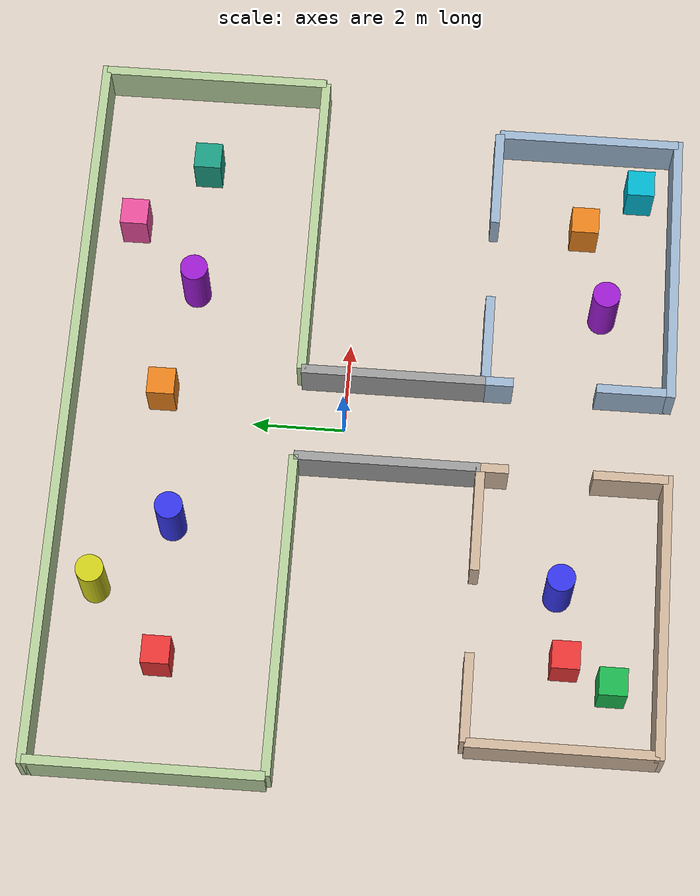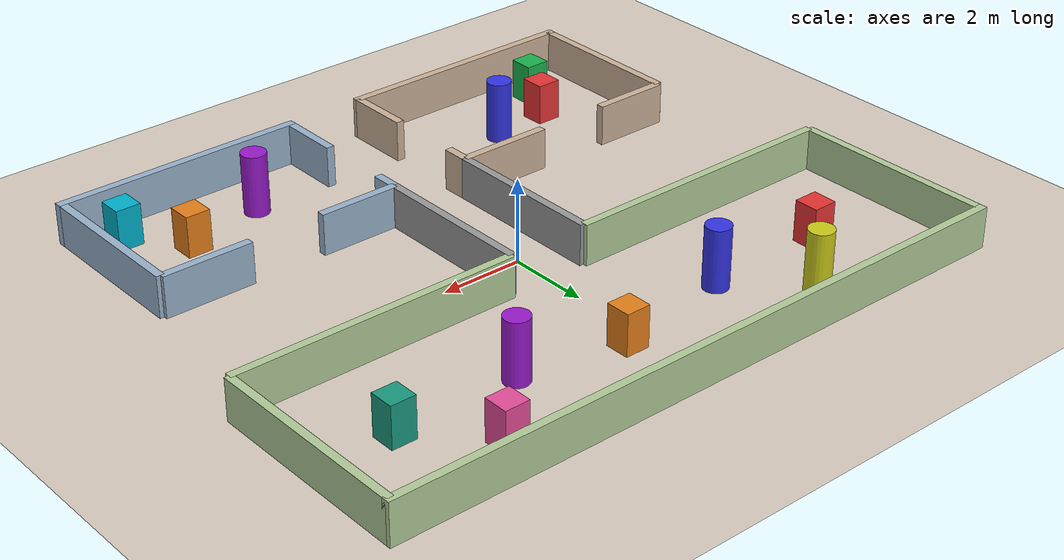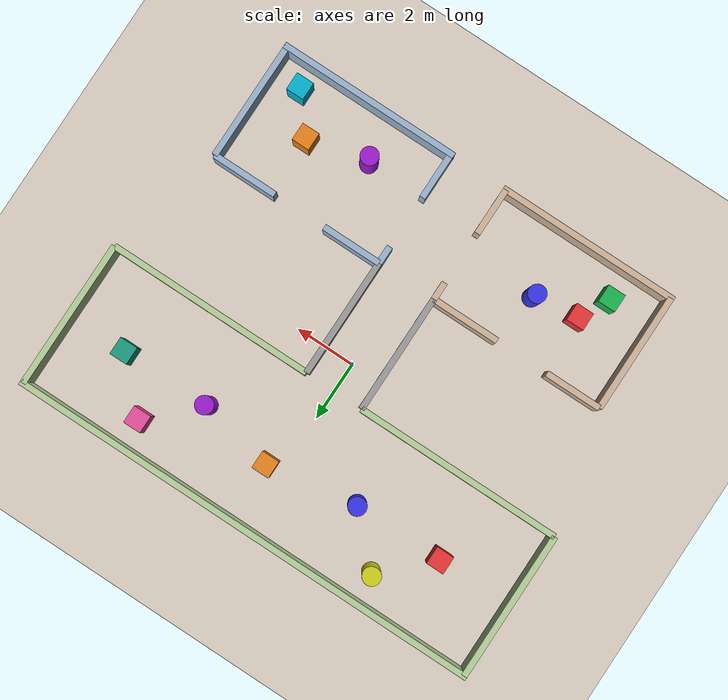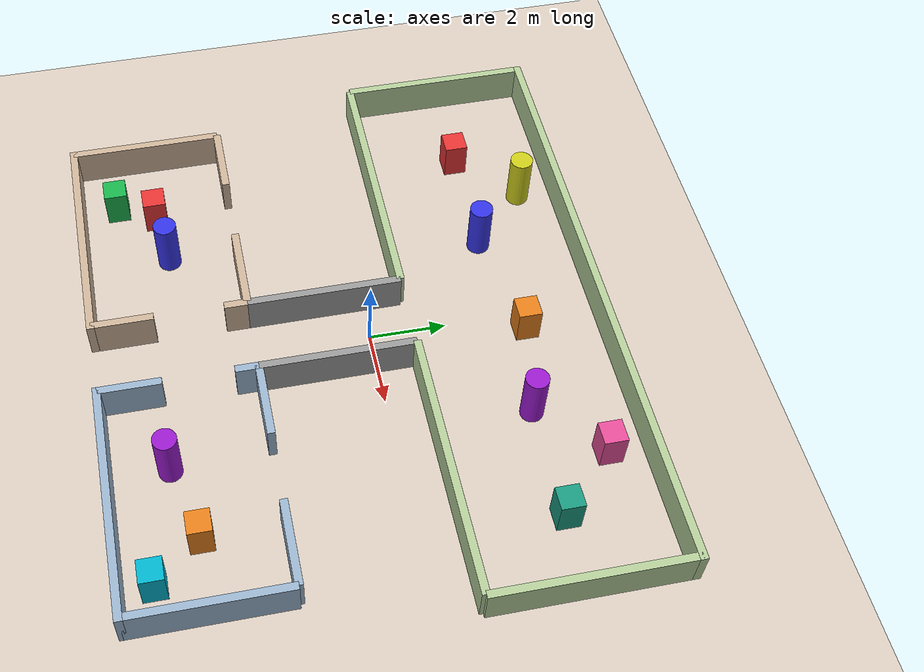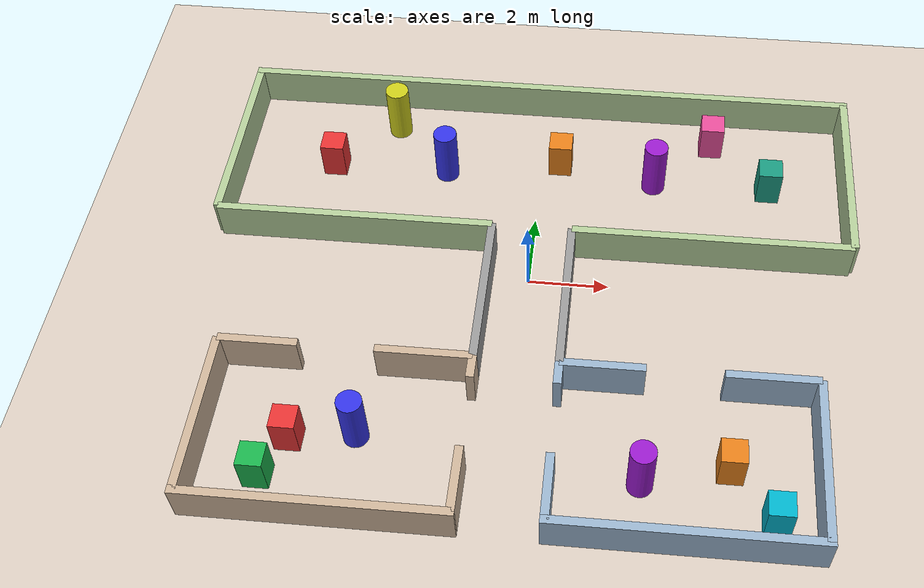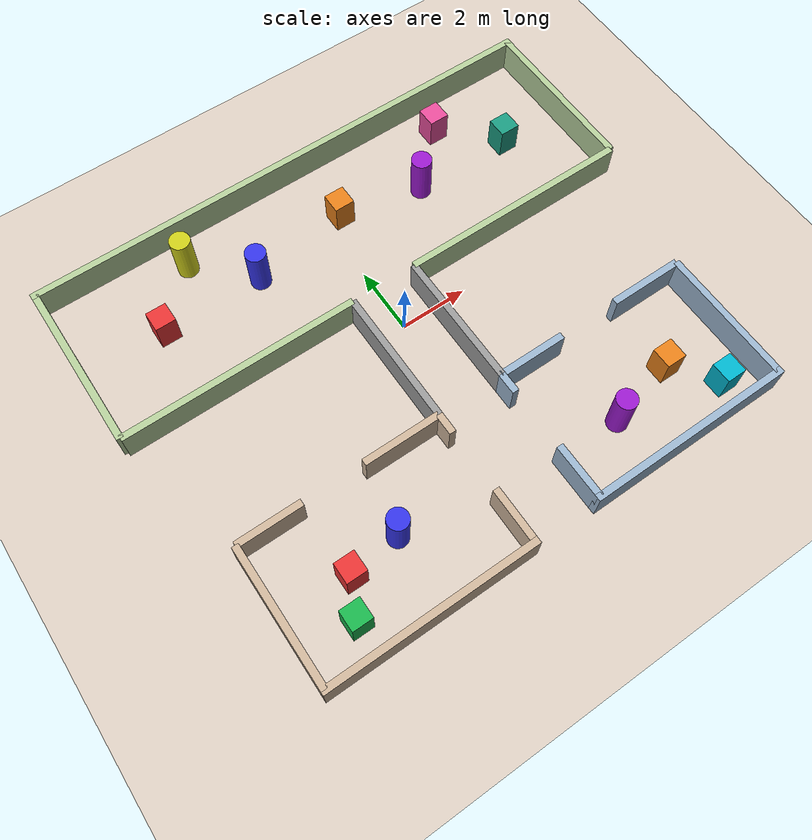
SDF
<?xml version="1.0" ?>
<sdf version="1.6">
  <world name="default">
    <physics name="1ms" type="ignored">
      <max_step_size>0.001</max_step_size>
      <real_time_factor>1.0</real_time_factor>
    </physics>
    <plugin filename="libignition-gazebo-physics-system.so"
            name="ignition::gazebo::systems::Physics"/>
    <plugin filename="libignition-gazebo-user-commands-system.so"
            name="ignition::gazebo::systems::UserCommands"/>
    <plugin filename="libignition-gazebo-scene-broadcaster-system.so"
            name="ignition::gazebo::systems::SceneBroadcaster"/>

    <light type="directional" name="sun">
      <cast_shadows>true</cast_shadows>
      <pose>0 0 10 0 0 0</pose>
      <diffuse>0.85 0.85 0.85 1</diffuse>
      <specular>0.2 0.2 0.2 1</specular>
      <attenuation>
        <range>1000</range><constant>0.9</constant>
        <linear>0.01</linear><quadratic>0.001</quadratic>
      </attenuation>
      <direction>-0.5 0.1 -0.9</direction>
    </light>

    <!-- Ground -->
    <model name="ground_plane"><static>true</static>
      <link name="link">
        <collision name="collision"><geometry><plane><normal>0 0 1</normal><size>100 100</size></plane></geometry></collision>
        <visual name="visual"><geometry><plane><normal>0 0 1</normal><size>100 100</size></plane></geometry>
          <material><ambient>0.85 0.8 0.75 1</ambient><diffuse>0.85 0.8 0.75 1</diffuse></material></visual>
      </link>
    </model>

    <model name="r1_south"><static>true</static><pose>-4 -7 0.5 0 0 0</pose>
      <link name="link"><collision name="c"><geometry><box><size>6.2 0.2 1</size></box></geometry></collision>
        <visual name="v"><geometry><box><size>6.2 0.2 1</size></box></geometry>
          <material><ambient>0.8 0.7 0.6 1</ambient><diffuse>0.8 0.7 0.6 1</diffuse></material></visual></link>
    </model>
    <model name="r1_west"><static>true</static><pose>-7 -5 0.5 0 0 0</pose>
      <link name="link"><collision name="c"><geometry><box><size>0.2 4 1</size></box></geometry></collision>
        <visual name="v"><geometry><box><size>0.2 4 1</size></box></geometry>
          <material><ambient>0.8 0.7 0.6 1</ambient><diffuse>0.8 0.7 0.6 1</diffuse></material></visual></link>
    </model>
    <!-- North wall: left piece x=-7→-5.1 (len=1.9, cx=-6.05), gap -5.1→-3.3 (1.8m), right piece x=-3.3→-1 (len=2.3, cx=-2.15) -->
    <model name="r1_north_L"><static>true</static><pose>-6.05 -3 0.5 0 0 0</pose>
      <link name="link"><collision name="c"><geometry><box><size>1.9 0.2 1</size></box></geometry></collision>
        <visual name="v"><geometry><box><size>1.9 0.2 1</size></box></geometry>
          <material><ambient>0.8 0.7 0.6 1</ambient><diffuse>0.8 0.7 0.6 1</diffuse></material></visual></link>
    </model>
    <model name="r1_north_R"><static>true</static><pose>-2.15 -3 0.5 0 0 0</pose>
      <link name="link"><collision name="c"><geometry><box><size>2.3 0.2 1</size></box></geometry></collision>
        <visual name="v"><geometry><box><size>2.3 0.2 1</size></box></geometry>
          <material><ambient>0.8 0.7 0.6 1</ambient><diffuse>0.8 0.7 0.6 1</diffuse></material></visual></link>
    </model>
    <!-- East wall: bottom y=-7→-5.4 (len=1.6, cy=-6.2), gap -5.4→-3.6 (1.8m), top y=-3.6→-3 (len=0.6, cy=-3.3) -->
    <model name="r1_east_B"><static>true</static><pose>-1 -6.2 0.5 0 0 0</pose>
      <link name="link"><collision name="c"><geometry><box><size>0.2 1.6 1</size></box></geometry></collision>
        <visual name="v"><geometry><box><size>0.2 1.6 1</size></box></geometry>
          <material><ambient>0.8 0.7 0.6 1</ambient><diffuse>0.8 0.7 0.6 1</diffuse></material></visual></link>
    </model>
    <model name="r1_east_T"><static>true</static><pose>-1 -3.3 0.5 0 0 0</pose>
      <link name="link"><collision name="c"><geometry><box><size>0.2 0.6 1</size></box></geometry></collision>
        <visual name="v"><geometry><box><size>0.2 0.6 1</size></box></geometry>
          <material><ambient>0.8 0.7 0.6 1</ambient><diffuse>0.8 0.7 0.6 1</diffuse></material></visual></link>
    </model>

    <!-- Room 1 Obstacles — interior x=-5.5→-2.5, y=-5.5→-4.5 -->
    <model name="r1_obs1"><static>true</static><pose>-5.0 -5.0 0.5 0 0 0</pose>
      <link name="link"><collision name="c"><geometry><box><size>0.6 0.6 1</size></box></geometry></collision>
        <visual name="v"><geometry><box><size>0.6 0.6 1</size></box></geometry>
          <material><ambient>0.9 0.2 0.2 1</ambient><diffuse>0.9 0.2 0.2 1</diffuse></material></visual></link>
    </model>
    <model name="r1_obs2"><static>true</static><pose>-3.5 -4.8 0.75 0 0 0</pose>
      <link name="link"><collision name="c"><geometry><cylinder><radius>0.3</radius><length>1.5</length></cylinder></geometry></collision>
        <visual name="v"><geometry><cylinder><radius>0.3</radius><length>1.5</length></cylinder></geometry>
          <material><ambient>0.2 0.2 0.9 1</ambient><diffuse>0.2 0.2 0.9 1</diffuse></material></visual></link>
    </model>
    <model name="r1_obs3"><static>true</static><pose>-5.5 -6.0 0.5 0 0 0</pose>
      <link name="link"><collision name="c"><geometry><box><size>0.6 0.6 1</size></box></geometry></collision>
        <visual name="v"><geometry><box><size>0.6 0.6 1</size></box></geometry>
          <material><ambient>0.1 0.7 0.3 1</ambient><diffuse>0.1 0.7 0.3 1</diffuse></material></visual></link>
    </model>

    <model name="r2_south"><static>true</static><pose>4 -7 0.5 0 0 0</pose>
      <link name="link"><collision name="c"><geometry><box><size>6.2 0.2 1</size></box></geometry></collision>
        <visual name="v"><geometry><box><size>6.2 0.2 1</size></box></geometry>
          <material><ambient>0.6 0.7 0.8 1</ambient><diffuse>0.6 0.7 0.8 1</diffuse></material></visual></link>
    </model>
    <model name="r2_east"><static>true</static><pose>7 -5 0.5 0 0 0</pose>
      <link name="link"><collision name="c"><geometry><box><size>0.2 4 1</size></box></geometry></collision>
        <visual name="v"><geometry><box><size>0.2 4 1</size></box></geometry>
          <material><ambient>0.6 0.7 0.8 1</ambient><diffuse>0.6 0.7 0.8 1</diffuse></material></visual></link>
    </model>
    <model name="r2_north_L"><static>true</static><pose>2 -3 0.5 0 0 0</pose>
      <link name="link"><collision name="c"><geometry><box><size>2 0.2 1</size></box></geometry></collision>
        <visual name="v"><geometry><box><size>2 0.2 1</size></box></geometry>
          <material><ambient>0.6 0.7 0.8 1</ambient><diffuse>0.6 0.7 0.8 1</diffuse></material></visual></link>
    </model>
    <model name="r2_north_R"><static>true</static><pose>5.9 -3 0.5 0 0 0</pose>
      <link name="link"><collision name="c"><geometry><box><size>2.2 0.2 1</size></box></geometry></collision>
        <visual name="v"><geometry><box><size>2.2 0.2 1</size></box></geometry>
          <material><ambient>0.6 0.7 0.8 1</ambient><diffuse>0.6 0.7 0.8 1</diffuse></material></visual></link>
    </model>
    <model name="r2_west_B"><static>true</static><pose>1 -6.2 0.5 0 0 0</pose>
      <link name="link"><collision name="c"><geometry><box><size>0.2 1.6 1</size></box></geometry></collision>
        <visual name="v"><geometry><box><size>0.2 1.6 1</size></box></geometry>
          <material><ambient>0.6 0.7 0.8 1</ambient><diffuse>0.6 0.7 0.8 1</diffuse></material></visual></link>
    </model>
    <model name="r2_west_T"><static>true</static><pose>1 -3.3 0.5 0 0 0</pose>
      <link name="link"><collision name="c"><geometry><box><size>0.2 0.6 1</size></box></geometry></collision>
        <visual name="v"><geometry><box><size>0.2 0.6 1</size></box></geometry>
          <material><ambient>0.6 0.7 0.8 1</ambient><diffuse>0.6 0.7 0.8 1</diffuse></material></visual></link>
    </model>

    <!-- Room 2 Obstacles -->
    <model name="r2_obs1"><static>true</static><pose>5.0 -5.0 0.5 0 0 0</pose>
      <link name="link"><collision name="c"><geometry><box><size>0.6 0.6 1</size></box></geometry></collision>
        <visual name="v"><geometry><box><size>0.6 0.6 1</size></box></geometry>
          <material><ambient>0.9 0.5 0.1 1</ambient><diffuse>0.9 0.5 0.1 1</diffuse></material></visual></link>
    </model>
    <model name="r2_obs2"><static>true</static><pose>3.0 -5.5 0.75 0 0 0</pose>
      <link name="link"><collision name="c"><geometry><cylinder><radius>0.3</radius><length>1.5</length></cylinder></geometry></collision>
        <visual name="v"><geometry><cylinder><radius>0.3</radius><length>1.5</length></cylinder></geometry>
          <material><ambient>0.6 0.1 0.8 1</ambient><diffuse>0.6 0.1 0.8 1</diffuse></material></visual></link>
    </model>
    <model name="r2_obs3"><static>true</static><pose>6.0 -6.2 0.5 0 0 0</pose>
      <link name="link"><collision name="c"><geometry><box><size>0.6 0.6 1</size></box></geometry></collision>
        <visual name="v"><geometry><box><size>0.6 0.6 1</size></box></geometry>
          <material><ambient>0.0 0.7 0.8 1</ambient><diffuse>0.0 0.7 0.8 1</diffuse></material></visual></link>
    </model>

    <model name="hall_west"><static>true</static><pose>-1 -1 0.5 0 0 0</pose>
      <link name="link"><collision name="c"><geometry><box><size>0.2 4 1</size></box></geometry></collision>
        <visual name="v"><geometry><box><size>0.2 4 1</size></box></geometry>
          <material><ambient>0.6 0.6 0.6 1</ambient><diffuse>0.6 0.6 0.6 1</diffuse></material></visual></link>
    </model>
    <model name="hall_east"><static>true</static><pose>1 -1 0.5 0 0 0</pose>
      <link name="link"><collision name="c"><geometry><box><size>0.2 4 1</size></box></geometry></collision>
        <visual name="v"><geometry><box><size>0.2 4 1</size></box></geometry>
          <material><ambient>0.6 0.6 0.6 1</ambient><diffuse>0.6 0.6 0.6 1</diffuse></material></visual></link>
    </model>

    <model name="r3_north"><static>true</static><pose>0 6 0.5 0 0 0</pose>
      <link name="link"><collision name="c"><geometry><box><size>16.2 0.2 1</size></box></geometry></collision>
        <visual name="v"><geometry><box><size>16.2 0.2 1</size></box></geometry>
          <material><ambient>0.7 0.8 0.6 1</ambient><diffuse>0.7 0.8 0.6 1</diffuse></material></visual></link>
    </model>
    <model name="r3_west"><static>true</static><pose>-8 3.5 0.5 0 0 0</pose>
      <link name="link"><collision name="c"><geometry><box><size>0.2 5 1</size></box></geometry></collision>
        <visual name="v"><geometry><box><size>0.2 5 1</size></box></geometry>
          <material><ambient>0.7 0.8 0.6 1</ambient><diffuse>0.7 0.8 0.6 1</diffuse></material></visual></link>
    </model>
    <model name="r3_east"><static>true</static><pose>8 3.5 0.5 0 0 0</pose>
      <link name="link"><collision name="c"><geometry><box><size>0.2 5 1</size></box></geometry></collision>
        <visual name="v"><geometry><box><size>0.2 5 1</size></box></geometry>
          <material><ambient>0.7 0.8 0.6 1</ambient><diffuse>0.7 0.8 0.6 1</diffuse></material></visual></link>
    </model>
    <model name="r3_south_L"><static>true</static><pose>-4.5 1 0.5 0 0 0</pose>
      <link name="link"><collision name="c"><geometry><box><size>7 0.2 1</size></box></geometry></collision>
        <visual name="v"><geometry><box><size>7 0.2 1</size></box></geometry>
          <material><ambient>0.7 0.8 0.6 1</ambient><diffuse>0.7 0.8 0.6 1</diffuse></material></visual></link>
    </model>
    <model name="r3_south_R"><static>true</static><pose>4.5 1 0.5 0 0 0</pose>
      <link name="link"><collision name="c"><geometry><box><size>7 0.2 1</size></box></geometry></collision>
        <visual name="v"><geometry><box><size>7 0.2 1</size></box></geometry>
          <material><ambient>0.7 0.8 0.6 1</ambient><diffuse>0.7 0.8 0.6 1</diffuse></material></visual></link>
    </model>

    <!-- Room 3 Obstacles — 5 obstacles across 16×5m space -->
    <model name="r3_obs1"><static>true</static><pose>-5.5 3.5 0.5 0 0 0</pose>
      <link name="link"><collision name="c"><geometry><box><size>0.6 0.6 1</size></box></geometry></collision>
        <visual name="v"><geometry><box><size>0.6 0.6 1</size></box></geometry>
          <material><ambient>0.9 0.2 0.2 1</ambient><diffuse>0.9 0.2 0.2 1</diffuse></material></visual></link>
    </model>
    <model name="r3_obs2"><static>true</static><pose>-2.5 3.5 0.75 0 0 0</pose>
      <link name="link"><collision name="c"><geometry><cylinder><radius>0.3</radius><length>1.5</length></cylinder></geometry></collision>
        <visual name="v"><geometry><cylinder><radius>0.3</radius><length>1.5</length></cylinder></geometry>
          <material><ambient>0.2 0.2 0.9 1</ambient><diffuse>0.2 0.2 0.9 1</diffuse></material></visual></link>
    </model>
    <model name="r3_obs3"><static>true</static><pose>0.5 4.0 0.5 0 0 0</pose>
      <link name="link"><collision name="c"><geometry><box><size>0.6 0.6 1</size></box></geometry></collision>
        <visual name="v"><geometry><box><size>0.6 0.6 1</size></box></geometry>
          <material><ambient>0.9 0.5 0.1 1</ambient><diffuse>0.9 0.5 0.1 1</diffuse></material></visual></link>
    </model>
    <model name="r3_obs4"><static>true</static><pose>3.0 3.5 0.75 0 0 0</pose>
      <link name="link"><collision name="c"><geometry><cylinder><radius>0.3</radius><length>1.5</length></cylinder></geometry></collision>
        <visual name="v"><geometry><cylinder><radius>0.3</radius><length>1.5</length></cylinder></geometry>
          <material><ambient>0.6 0.1 0.8 1</ambient><diffuse>0.6 0.1 0.8 1</diffuse></material></visual></link>
    </model>
    <model name="r3_obs5"><static>true</static><pose>6.0 3.5 0.5 0 0 0</pose>
      <link name="link"><collision name="c"><geometry><box><size>0.6 0.6 1</size></box></geometry></collision>
        <visual name="v"><geometry><box><size>0.6 0.6 1</size></box></geometry>
          <material><ambient>0.1 0.6 0.5 1</ambient><diffuse>0.1 0.6 0.5 1</diffuse></material></visual></link>
    </model>
    <!-- Room 3 back-row obstacles -->
    <model name="r3_obs6"><static>true</static><pose>-4.0 5.0 0.75 0 0 0</pose>
      <link name="link"><collision name="c"><geometry><cylinder><radius>0.3</radius><length>1.5</length></cylinder></geometry></collision>
        <visual name="v"><geometry><cylinder><radius>0.3</radius><length>1.5</length></cylinder></geometry>
          <material><ambient>0.8 0.8 0.1 1</ambient><diffuse>0.8 0.8 0.1 1</diffuse></material></visual></link>
    </model>
    <model name="r3_obs7"><static>true</static><pose>4.5 5.0 0.5 0 0 0</pose>
      <link name="link"><collision name="c"><geometry><box><size>0.6 0.6 1</size></box></geometry></collision>
        <visual name="v"><geometry><box><size>0.6 0.6 1</size></box></geometry>
          <material><ambient>0.9 0.3 0.6 1</ambient><diffuse>0.9 0.3 0.6 1</diffuse></material></visual></link>
    </model>

  </world>
</sdf>
